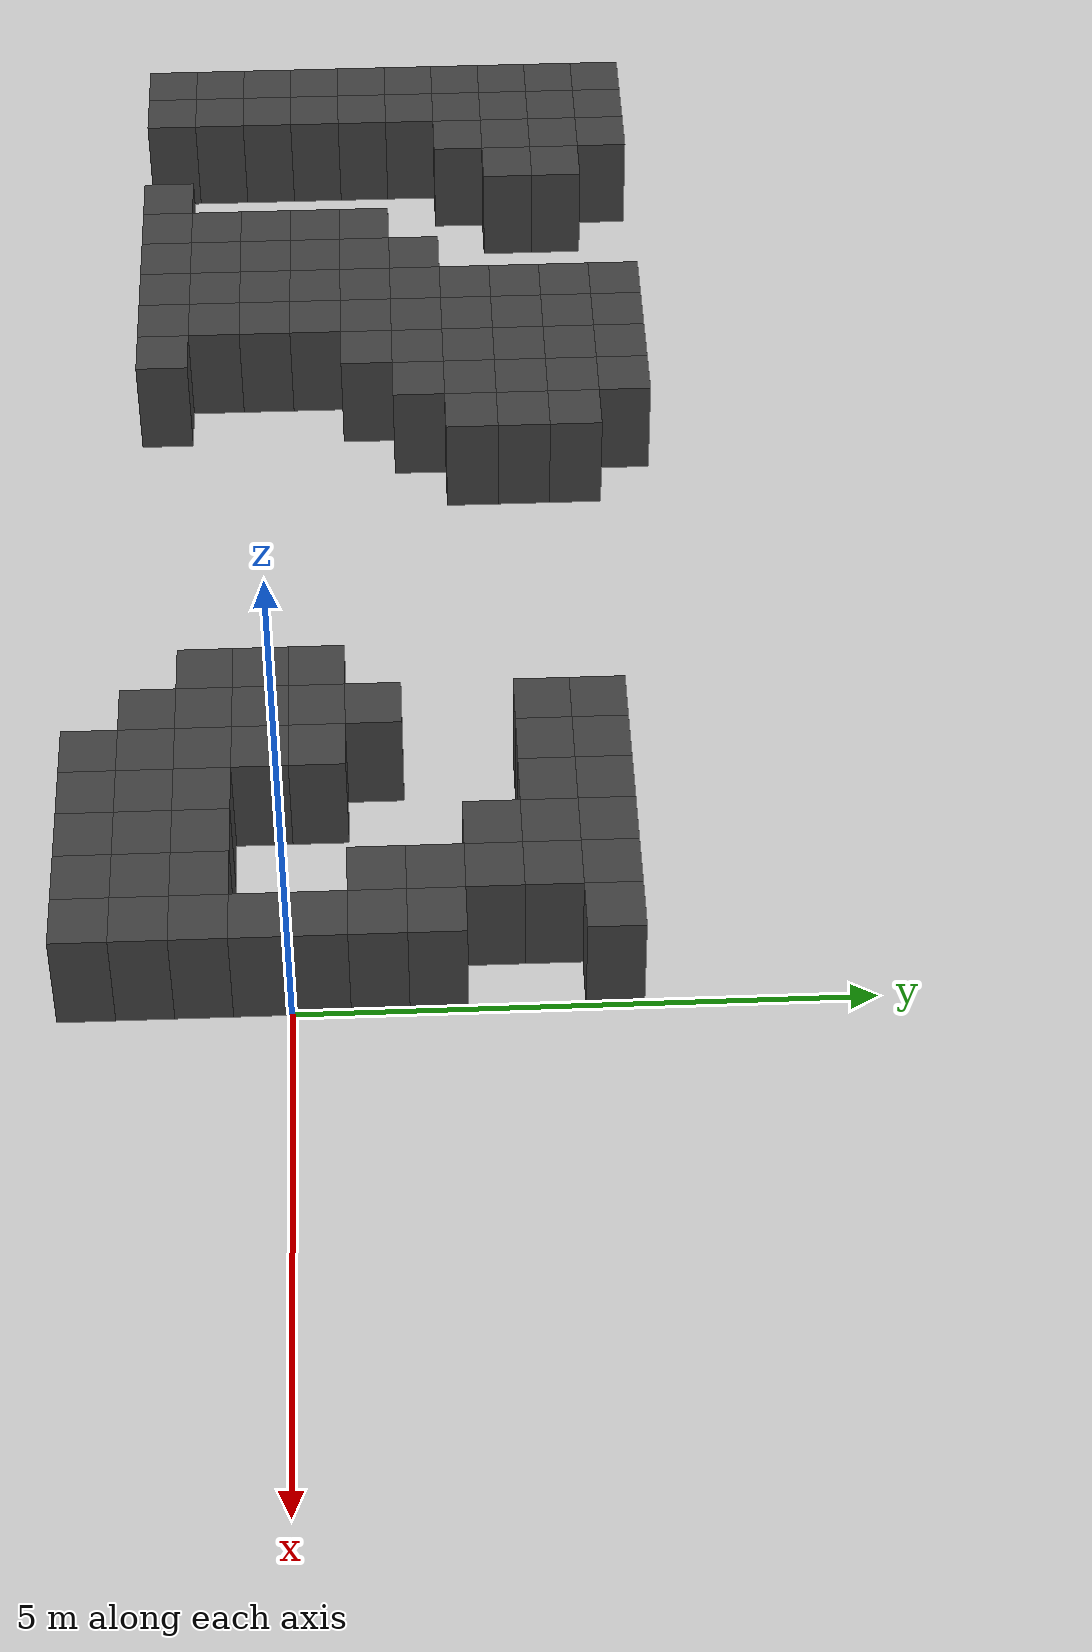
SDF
<sdf version="1.7">
 <world name="map_9061">
  <model name="ground_plane">
   <static>true</static>
   <link name="link">
    <collision name="collision">
     <geometry><plane><normal>0 0 1</normal><size>200 200</size></plane></geometry>
    </collision>
    <visual name="visual">
     <geometry><plane><normal>0 0 1</normal><size>200 200</size></plane></geometry>
     <material><ambient>0.8 0.8 0.8 1</ambient><diffuse>0.8 0.8 0.8 1</diffuse></material>
    </visual>
   </link>
  </model>
  <model name="maze_environment">
   <static>true</static>
   <link name="wall_273">
    <pose>-12.250 3.250 0.500 0 0 0</pose>
    <collision name="col"><geometry><box><size>0.5 0.5 1.0</size></box></geometry></collision>
    <visual name="vis">
     <geometry><box><size>0.5 0.5 1.0</size></box></geometry>
     <material><ambient>0.15 0.15 0.15 1</ambient><diffuse>0.25 0.25 0.25 1</diffuse></material>
    </visual>
   </link>
   <link name="wall_274">
    <pose>-11.750 3.250 0.500 0 0 0</pose>
    <collision name="col"><geometry><box><size>0.5 0.5 1.0</size></box></geometry></collision>
    <visual name="vis">
     <geometry><box><size>0.5 0.5 1.0</size></box></geometry>
     <material><ambient>0.15 0.15 0.15 1</ambient><diffuse>0.25 0.25 0.25 1</diffuse></material>
    </visual>
   </link>
   <link name="wall_275">
    <pose>-11.250 3.250 0.500 0 0 0</pose>
    <collision name="col"><geometry><box><size>0.5 0.5 1.0</size></box></geometry></collision>
    <visual name="vis">
     <geometry><box><size>0.5 0.5 1.0</size></box></geometry>
     <material><ambient>0.15 0.15 0.15 1</ambient><diffuse>0.25 0.25 0.25 1</diffuse></material>
    </visual>
   </link>
   <link name="wall_276">
    <pose>-8.750 3.250 0.500 0 0 0</pose>
    <collision name="col"><geometry><box><size>0.5 0.5 1.0</size></box></geometry></collision>
    <visual name="vis">
     <geometry><box><size>0.5 0.5 1.0</size></box></geometry>
     <material><ambient>0.15 0.15 0.15 1</ambient><diffuse>0.25 0.25 0.25 1</diffuse></material>
    </visual>
   </link>
   <link name="wall_277">
    <pose>-8.250 3.250 0.500 0 0 0</pose>
    <collision name="col"><geometry><box><size>0.5 0.5 1.0</size></box></geometry></collision>
    <visual name="vis">
     <geometry><box><size>0.5 0.5 1.0</size></box></geometry>
     <material><ambient>0.15 0.15 0.15 1</ambient><diffuse>0.25 0.25 0.25 1</diffuse></material>
    </visual>
   </link>
   <link name="wall_278">
    <pose>-7.750 3.250 0.500 0 0 0</pose>
    <collision name="col"><geometry><box><size>0.5 0.5 1.0</size></box></geometry></collision>
    <visual name="vis">
     <geometry><box><size>0.5 0.5 1.0</size></box></geometry>
     <material><ambient>0.15 0.15 0.15 1</ambient><diffuse>0.25 0.25 0.25 1</diffuse></material>
    </visual>
   </link>
   <link name="wall_279">
    <pose>-7.250 3.250 0.500 0 0 0</pose>
    <collision name="col"><geometry><box><size>0.5 0.5 1.0</size></box></geometry></collision>
    <visual name="vis">
     <geometry><box><size>0.5 0.5 1.0</size></box></geometry>
     <material><ambient>0.15 0.15 0.15 1</ambient><diffuse>0.25 0.25 0.25 1</diffuse></material>
    </visual>
   </link>
   <link name="wall_292">
    <pose>-12.250 2.750 0.500 0 0 0</pose>
    <collision name="col"><geometry><box><size>0.5 0.5 1.0</size></box></geometry></collision>
    <visual name="vis">
     <geometry><box><size>0.5 0.5 1.0</size></box></geometry>
     <material><ambient>0.15 0.15 0.15 1</ambient><diffuse>0.25 0.25 0.25 1</diffuse></material>
    </visual>
   </link>
   <link name="wall_293">
    <pose>-11.750 2.750 0.500 0 0 0</pose>
    <collision name="col"><geometry><box><size>0.5 0.5 1.0</size></box></geometry></collision>
    <visual name="vis">
     <geometry><box><size>0.5 0.5 1.0</size></box></geometry>
     <material><ambient>0.15 0.15 0.15 1</ambient><diffuse>0.25 0.25 0.25 1</diffuse></material>
    </visual>
   </link>
   <link name="wall_294">
    <pose>-11.250 2.750 0.500 0 0 0</pose>
    <collision name="col"><geometry><box><size>0.5 0.5 1.0</size></box></geometry></collision>
    <visual name="vis">
     <geometry><box><size>0.5 0.5 1.0</size></box></geometry>
     <material><ambient>0.15 0.15 0.15 1</ambient><diffuse>0.25 0.25 0.25 1</diffuse></material>
    </visual>
   </link>
   <link name="wall_295">
    <pose>-10.750 2.750 0.500 0 0 0</pose>
    <collision name="col"><geometry><box><size>0.5 0.5 1.0</size></box></geometry></collision>
    <visual name="vis">
     <geometry><box><size>0.5 0.5 1.0</size></box></geometry>
     <material><ambient>0.15 0.15 0.15 1</ambient><diffuse>0.25 0.25 0.25 1</diffuse></material>
    </visual>
   </link>
   <link name="wall_296">
    <pose>-8.750 2.750 0.500 0 0 0</pose>
    <collision name="col"><geometry><box><size>0.5 0.5 1.0</size></box></geometry></collision>
    <visual name="vis">
     <geometry><box><size>0.5 0.5 1.0</size></box></geometry>
     <material><ambient>0.15 0.15 0.15 1</ambient><diffuse>0.25 0.25 0.25 1</diffuse></material>
    </visual>
   </link>
   <link name="wall_297">
    <pose>-8.250 2.750 0.500 0 0 0</pose>
    <collision name="col"><geometry><box><size>0.5 0.5 1.0</size></box></geometry></collision>
    <visual name="vis">
     <geometry><box><size>0.5 0.5 1.0</size></box></geometry>
     <material><ambient>0.15 0.15 0.15 1</ambient><diffuse>0.25 0.25 0.25 1</diffuse></material>
    </visual>
   </link>
   <link name="wall_298">
    <pose>-7.750 2.750 0.500 0 0 0</pose>
    <collision name="col"><geometry><box><size>0.5 0.5 1.0</size></box></geometry></collision>
    <visual name="vis">
     <geometry><box><size>0.5 0.5 1.0</size></box></geometry>
     <material><ambient>0.15 0.15 0.15 1</ambient><diffuse>0.25 0.25 0.25 1</diffuse></material>
    </visual>
   </link>
   <link name="wall_299">
    <pose>-7.250 2.750 0.500 0 0 0</pose>
    <collision name="col"><geometry><box><size>0.5 0.5 1.0</size></box></geometry></collision>
    <visual name="vis">
     <geometry><box><size>0.5 0.5 1.0</size></box></geometry>
     <material><ambient>0.15 0.15 0.15 1</ambient><diffuse>0.25 0.25 0.25 1</diffuse></material>
    </visual>
   </link>
   <link name="wall_300">
    <pose>-6.750 2.750 0.500 0 0 0</pose>
    <collision name="col"><geometry><box><size>0.5 0.5 1.0</size></box></geometry></collision>
    <visual name="vis">
     <geometry><box><size>0.5 0.5 1.0</size></box></geometry>
     <material><ambient>0.15 0.15 0.15 1</ambient><diffuse>0.25 0.25 0.25 1</diffuse></material>
    </visual>
   </link>
   <link name="wall_301">
    <pose>-2.750 2.750 0.500 0 0 0</pose>
    <collision name="col"><geometry><box><size>0.5 0.5 1.0</size></box></geometry></collision>
    <visual name="vis">
     <geometry><box><size>0.5 0.5 1.0</size></box></geometry>
     <material><ambient>0.15 0.15 0.15 1</ambient><diffuse>0.25 0.25 0.25 1</diffuse></material>
    </visual>
   </link>
   <link name="wall_302">
    <pose>-2.250 2.750 0.500 0 0 0</pose>
    <collision name="col"><geometry><box><size>0.5 0.5 1.0</size></box></geometry></collision>
    <visual name="vis">
     <geometry><box><size>0.5 0.5 1.0</size></box></geometry>
     <material><ambient>0.15 0.15 0.15 1</ambient><diffuse>0.25 0.25 0.25 1</diffuse></material>
    </visual>
   </link>
   <link name="wall_303">
    <pose>-1.750 2.750 0.500 0 0 0</pose>
    <collision name="col"><geometry><box><size>0.5 0.5 1.0</size></box></geometry></collision>
    <visual name="vis">
     <geometry><box><size>0.5 0.5 1.0</size></box></geometry>
     <material><ambient>0.15 0.15 0.15 1</ambient><diffuse>0.25 0.25 0.25 1</diffuse></material>
    </visual>
   </link>
   <link name="wall_304">
    <pose>-1.250 2.750 0.500 0 0 0</pose>
    <collision name="col"><geometry><box><size>0.5 0.5 1.0</size></box></geometry></collision>
    <visual name="vis">
     <geometry><box><size>0.5 0.5 1.0</size></box></geometry>
     <material><ambient>0.15 0.15 0.15 1</ambient><diffuse>0.25 0.25 0.25 1</diffuse></material>
    </visual>
   </link>
   <link name="wall_305">
    <pose>-0.750 2.750 0.500 0 0 0</pose>
    <collision name="col"><geometry><box><size>0.5 0.5 1.0</size></box></geometry></collision>
    <visual name="vis">
     <geometry><box><size>0.5 0.5 1.0</size></box></geometry>
     <material><ambient>0.15 0.15 0.15 1</ambient><diffuse>0.25 0.25 0.25 1</diffuse></material>
    </visual>
   </link>
   <link name="wall_306">
    <pose>-0.250 2.750 0.500 0 0 0</pose>
    <collision name="col"><geometry><box><size>0.5 0.5 1.0</size></box></geometry></collision>
    <visual name="vis">
     <geometry><box><size>0.5 0.5 1.0</size></box></geometry>
     <material><ambient>0.15 0.15 0.15 1</ambient><diffuse>0.25 0.25 0.25 1</diffuse></material>
    </visual>
   </link>
   <link name="wall_313">
    <pose>-12.250 2.250 0.500 0 0 0</pose>
    <collision name="col"><geometry><box><size>0.5 0.5 1.0</size></box></geometry></collision>
    <visual name="vis">
     <geometry><box><size>0.5 0.5 1.0</size></box></geometry>
     <material><ambient>0.15 0.15 0.15 1</ambient><diffuse>0.25 0.25 0.25 1</diffuse></material>
    </visual>
   </link>
   <link name="wall_314">
    <pose>-11.750 2.250 0.500 0 0 0</pose>
    <collision name="col"><geometry><box><size>0.5 0.5 1.0</size></box></geometry></collision>
    <visual name="vis">
     <geometry><box><size>0.5 0.5 1.0</size></box></geometry>
     <material><ambient>0.15 0.15 0.15 1</ambient><diffuse>0.25 0.25 0.25 1</diffuse></material>
    </visual>
   </link>
   <link name="wall_315">
    <pose>-11.250 2.250 0.500 0 0 0</pose>
    <collision name="col"><geometry><box><size>0.5 0.5 1.0</size></box></geometry></collision>
    <visual name="vis">
     <geometry><box><size>0.5 0.5 1.0</size></box></geometry>
     <material><ambient>0.15 0.15 0.15 1</ambient><diffuse>0.25 0.25 0.25 1</diffuse></material>
    </visual>
   </link>
   <link name="wall_316">
    <pose>-10.750 2.250 0.500 0 0 0</pose>
    <collision name="col"><geometry><box><size>0.5 0.5 1.0</size></box></geometry></collision>
    <visual name="vis">
     <geometry><box><size>0.5 0.5 1.0</size></box></geometry>
     <material><ambient>0.15 0.15 0.15 1</ambient><diffuse>0.25 0.25 0.25 1</diffuse></material>
    </visual>
   </link>
   <link name="wall_317">
    <pose>-8.750 2.250 0.500 0 0 0</pose>
    <collision name="col"><geometry><box><size>0.5 0.5 1.0</size></box></geometry></collision>
    <visual name="vis">
     <geometry><box><size>0.5 0.5 1.0</size></box></geometry>
     <material><ambient>0.15 0.15 0.15 1</ambient><diffuse>0.25 0.25 0.25 1</diffuse></material>
    </visual>
   </link>
   <link name="wall_318">
    <pose>-8.250 2.250 0.500 0 0 0</pose>
    <collision name="col"><geometry><box><size>0.5 0.5 1.0</size></box></geometry></collision>
    <visual name="vis">
     <geometry><box><size>0.5 0.5 1.0</size></box></geometry>
     <material><ambient>0.15 0.15 0.15 1</ambient><diffuse>0.25 0.25 0.25 1</diffuse></material>
    </visual>
   </link>
   <link name="wall_319">
    <pose>-7.750 2.250 0.500 0 0 0</pose>
    <collision name="col"><geometry><box><size>0.5 0.5 1.0</size></box></geometry></collision>
    <visual name="vis">
     <geometry><box><size>0.5 0.5 1.0</size></box></geometry>
     <material><ambient>0.15 0.15 0.15 1</ambient><diffuse>0.25 0.25 0.25 1</diffuse></material>
    </visual>
   </link>
   <link name="wall_320">
    <pose>-7.250 2.250 0.500 0 0 0</pose>
    <collision name="col"><geometry><box><size>0.5 0.5 1.0</size></box></geometry></collision>
    <visual name="vis">
     <geometry><box><size>0.5 0.5 1.0</size></box></geometry>
     <material><ambient>0.15 0.15 0.15 1</ambient><diffuse>0.25 0.25 0.25 1</diffuse></material>
    </visual>
   </link>
   <link name="wall_321">
    <pose>-6.750 2.250 0.500 0 0 0</pose>
    <collision name="col"><geometry><box><size>0.5 0.5 1.0</size></box></geometry></collision>
    <visual name="vis">
     <geometry><box><size>0.5 0.5 1.0</size></box></geometry>
     <material><ambient>0.15 0.15 0.15 1</ambient><diffuse>0.25 0.25 0.25 1</diffuse></material>
    </visual>
   </link>
   <link name="wall_322">
    <pose>-2.750 2.250 0.500 0 0 0</pose>
    <collision name="col"><geometry><box><size>0.5 0.5 1.0</size></box></geometry></collision>
    <visual name="vis">
     <geometry><box><size>0.5 0.5 1.0</size></box></geometry>
     <material><ambient>0.15 0.15 0.15 1</ambient><diffuse>0.25 0.25 0.25 1</diffuse></material>
    </visual>
   </link>
   <link name="wall_323">
    <pose>-2.250 2.250 0.500 0 0 0</pose>
    <collision name="col"><geometry><box><size>0.5 0.5 1.0</size></box></geometry></collision>
    <visual name="vis">
     <geometry><box><size>0.5 0.5 1.0</size></box></geometry>
     <material><ambient>0.15 0.15 0.15 1</ambient><diffuse>0.25 0.25 0.25 1</diffuse></material>
    </visual>
   </link>
   <link name="wall_324">
    <pose>-1.750 2.250 0.500 0 0 0</pose>
    <collision name="col"><geometry><box><size>0.5 0.5 1.0</size></box></geometry></collision>
    <visual name="vis">
     <geometry><box><size>0.5 0.5 1.0</size></box></geometry>
     <material><ambient>0.15 0.15 0.15 1</ambient><diffuse>0.25 0.25 0.25 1</diffuse></material>
    </visual>
   </link>
   <link name="wall_325">
    <pose>-1.250 2.250 0.500 0 0 0</pose>
    <collision name="col"><geometry><box><size>0.5 0.5 1.0</size></box></geometry></collision>
    <visual name="vis">
     <geometry><box><size>0.5 0.5 1.0</size></box></geometry>
     <material><ambient>0.15 0.15 0.15 1</ambient><diffuse>0.25 0.25 0.25 1</diffuse></material>
    </visual>
   </link>
   <link name="wall_326">
    <pose>-0.750 2.250 0.500 0 0 0</pose>
    <collision name="col"><geometry><box><size>0.5 0.5 1.0</size></box></geometry></collision>
    <visual name="vis">
     <geometry><box><size>0.5 0.5 1.0</size></box></geometry>
     <material><ambient>0.15 0.15 0.15 1</ambient><diffuse>0.25 0.25 0.25 1</diffuse></material>
    </visual>
   </link>
   <link name="wall_334">
    <pose>-12.250 1.750 0.500 0 0 0</pose>
    <collision name="col"><geometry><box><size>0.5 0.5 1.0</size></box></geometry></collision>
    <visual name="vis">
     <geometry><box><size>0.5 0.5 1.0</size></box></geometry>
     <material><ambient>0.15 0.15 0.15 1</ambient><diffuse>0.25 0.25 0.25 1</diffuse></material>
    </visual>
   </link>
   <link name="wall_335">
    <pose>-11.750 1.750 0.500 0 0 0</pose>
    <collision name="col"><geometry><box><size>0.5 0.5 1.0</size></box></geometry></collision>
    <visual name="vis">
     <geometry><box><size>0.5 0.5 1.0</size></box></geometry>
     <material><ambient>0.15 0.15 0.15 1</ambient><diffuse>0.25 0.25 0.25 1</diffuse></material>
    </visual>
   </link>
   <link name="wall_336">
    <pose>-11.250 1.750 0.500 0 0 0</pose>
    <collision name="col"><geometry><box><size>0.5 0.5 1.0</size></box></geometry></collision>
    <visual name="vis">
     <geometry><box><size>0.5 0.5 1.0</size></box></geometry>
     <material><ambient>0.15 0.15 0.15 1</ambient><diffuse>0.25 0.25 0.25 1</diffuse></material>
    </visual>
   </link>
   <link name="wall_337">
    <pose>-8.750 1.750 0.500 0 0 0</pose>
    <collision name="col"><geometry><box><size>0.5 0.5 1.0</size></box></geometry></collision>
    <visual name="vis">
     <geometry><box><size>0.5 0.5 1.0</size></box></geometry>
     <material><ambient>0.15 0.15 0.15 1</ambient><diffuse>0.25 0.25 0.25 1</diffuse></material>
    </visual>
   </link>
   <link name="wall_338">
    <pose>-8.250 1.750 0.500 0 0 0</pose>
    <collision name="col"><geometry><box><size>0.5 0.5 1.0</size></box></geometry></collision>
    <visual name="vis">
     <geometry><box><size>0.5 0.5 1.0</size></box></geometry>
     <material><ambient>0.15 0.15 0.15 1</ambient><diffuse>0.25 0.25 0.25 1</diffuse></material>
    </visual>
   </link>
   <link name="wall_339">
    <pose>-7.750 1.750 0.500 0 0 0</pose>
    <collision name="col"><geometry><box><size>0.5 0.5 1.0</size></box></geometry></collision>
    <visual name="vis">
     <geometry><box><size>0.5 0.5 1.0</size></box></geometry>
     <material><ambient>0.15 0.15 0.15 1</ambient><diffuse>0.25 0.25 0.25 1</diffuse></material>
    </visual>
   </link>
   <link name="wall_340">
    <pose>-7.250 1.750 0.500 0 0 0</pose>
    <collision name="col"><geometry><box><size>0.5 0.5 1.0</size></box></geometry></collision>
    <visual name="vis">
     <geometry><box><size>0.5 0.5 1.0</size></box></geometry>
     <material><ambient>0.15 0.15 0.15 1</ambient><diffuse>0.25 0.25 0.25 1</diffuse></material>
    </visual>
   </link>
   <link name="wall_341">
    <pose>-6.750 1.750 0.500 0 0 0</pose>
    <collision name="col"><geometry><box><size>0.5 0.5 1.0</size></box></geometry></collision>
    <visual name="vis">
     <geometry><box><size>0.5 0.5 1.0</size></box></geometry>
     <material><ambient>0.15 0.15 0.15 1</ambient><diffuse>0.25 0.25 0.25 1</diffuse></material>
    </visual>
   </link>
   <link name="wall_342">
    <pose>-1.250 1.750 0.500 0 0 0</pose>
    <collision name="col"><geometry><box><size>0.5 0.5 1.0</size></box></geometry></collision>
    <visual name="vis">
     <geometry><box><size>0.5 0.5 1.0</size></box></geometry>
     <material><ambient>0.15 0.15 0.15 1</ambient><diffuse>0.25 0.25 0.25 1</diffuse></material>
    </visual>
   </link>
   <link name="wall_343">
    <pose>-0.750 1.750 0.500 0 0 0</pose>
    <collision name="col"><geometry><box><size>0.5 0.5 1.0</size></box></geometry></collision>
    <visual name="vis">
     <geometry><box><size>0.5 0.5 1.0</size></box></geometry>
     <material><ambient>0.15 0.15 0.15 1</ambient><diffuse>0.25 0.25 0.25 1</diffuse></material>
    </visual>
   </link>
   <link name="wall_354">
    <pose>-12.250 1.250 0.500 0 0 0</pose>
    <collision name="col"><geometry><box><size>0.5 0.5 1.0</size></box></geometry></collision>
    <visual name="vis">
     <geometry><box><size>0.5 0.5 1.0</size></box></geometry>
     <material><ambient>0.15 0.15 0.15 1</ambient><diffuse>0.25 0.25 0.25 1</diffuse></material>
    </visual>
   </link>
   <link name="wall_355">
    <pose>-11.750 1.250 0.500 0 0 0</pose>
    <collision name="col"><geometry><box><size>0.5 0.5 1.0</size></box></geometry></collision>
    <visual name="vis">
     <geometry><box><size>0.5 0.5 1.0</size></box></geometry>
     <material><ambient>0.15 0.15 0.15 1</ambient><diffuse>0.25 0.25 0.25 1</diffuse></material>
    </visual>
   </link>
   <link name="wall_356">
    <pose>-9.250 1.250 0.500 0 0 0</pose>
    <collision name="col"><geometry><box><size>0.5 0.5 1.0</size></box></geometry></collision>
    <visual name="vis">
     <geometry><box><size>0.5 0.5 1.0</size></box></geometry>
     <material><ambient>0.15 0.15 0.15 1</ambient><diffuse>0.25 0.25 0.25 1</diffuse></material>
    </visual>
   </link>
   <link name="wall_357">
    <pose>-8.750 1.250 0.500 0 0 0</pose>
    <collision name="col"><geometry><box><size>0.5 0.5 1.0</size></box></geometry></collision>
    <visual name="vis">
     <geometry><box><size>0.5 0.5 1.0</size></box></geometry>
     <material><ambient>0.15 0.15 0.15 1</ambient><diffuse>0.25 0.25 0.25 1</diffuse></material>
    </visual>
   </link>
   <link name="wall_358">
    <pose>-8.250 1.250 0.500 0 0 0</pose>
    <collision name="col"><geometry><box><size>0.5 0.5 1.0</size></box></geometry></collision>
    <visual name="vis">
     <geometry><box><size>0.5 0.5 1.0</size></box></geometry>
     <material><ambient>0.15 0.15 0.15 1</ambient><diffuse>0.25 0.25 0.25 1</diffuse></material>
    </visual>
   </link>
   <link name="wall_359">
    <pose>-7.750 1.250 0.500 0 0 0</pose>
    <collision name="col"><geometry><box><size>0.5 0.5 1.0</size></box></geometry></collision>
    <visual name="vis">
     <geometry><box><size>0.5 0.5 1.0</size></box></geometry>
     <material><ambient>0.15 0.15 0.15 1</ambient><diffuse>0.25 0.25 0.25 1</diffuse></material>
    </visual>
   </link>
   <link name="wall_360">
    <pose>-7.250 1.250 0.500 0 0 0</pose>
    <collision name="col"><geometry><box><size>0.5 0.5 1.0</size></box></geometry></collision>
    <visual name="vis">
     <geometry><box><size>0.5 0.5 1.0</size></box></geometry>
     <material><ambient>0.15 0.15 0.15 1</ambient><diffuse>0.25 0.25 0.25 1</diffuse></material>
    </visual>
   </link>
   <link name="wall_361">
    <pose>-0.750 1.250 0.500 0 0 0</pose>
    <collision name="col"><geometry><box><size>0.5 0.5 1.0</size></box></geometry></collision>
    <visual name="vis">
     <geometry><box><size>0.5 0.5 1.0</size></box></geometry>
     <material><ambient>0.15 0.15 0.15 1</ambient><diffuse>0.25 0.25 0.25 1</diffuse></material>
    </visual>
   </link>
   <link name="wall_362">
    <pose>-0.250 1.250 0.500 0 0 0</pose>
    <collision name="col"><geometry><box><size>0.5 0.5 1.0</size></box></geometry></collision>
    <visual name="vis">
     <geometry><box><size>0.5 0.5 1.0</size></box></geometry>
     <material><ambient>0.15 0.15 0.15 1</ambient><diffuse>0.25 0.25 0.25 1</diffuse></material>
    </visual>
   </link>
   <link name="wall_372">
    <pose>-12.250 0.750 0.500 0 0 0</pose>
    <collision name="col"><geometry><box><size>0.5 0.5 1.0</size></box></geometry></collision>
    <visual name="vis">
     <geometry><box><size>0.5 0.5 1.0</size></box></geometry>
     <material><ambient>0.15 0.15 0.15 1</ambient><diffuse>0.25 0.25 0.25 1</diffuse></material>
    </visual>
   </link>
   <link name="wall_373">
    <pose>-11.750 0.750 0.500 0 0 0</pose>
    <collision name="col"><geometry><box><size>0.5 0.5 1.0</size></box></geometry></collision>
    <visual name="vis">
     <geometry><box><size>0.5 0.5 1.0</size></box></geometry>
     <material><ambient>0.15 0.15 0.15 1</ambient><diffuse>0.25 0.25 0.25 1</diffuse></material>
    </visual>
   </link>
   <link name="wall_374">
    <pose>-9.750 0.750 0.500 0 0 0</pose>
    <collision name="col"><geometry><box><size>0.5 0.5 1.0</size></box></geometry></collision>
    <visual name="vis">
     <geometry><box><size>0.5 0.5 1.0</size></box></geometry>
     <material><ambient>0.15 0.15 0.15 1</ambient><diffuse>0.25 0.25 0.25 1</diffuse></material>
    </visual>
   </link>
   <link name="wall_375">
    <pose>-9.250 0.750 0.500 0 0 0</pose>
    <collision name="col"><geometry><box><size>0.5 0.5 1.0</size></box></geometry></collision>
    <visual name="vis">
     <geometry><box><size>0.5 0.5 1.0</size></box></geometry>
     <material><ambient>0.15 0.15 0.15 1</ambient><diffuse>0.25 0.25 0.25 1</diffuse></material>
    </visual>
   </link>
   <link name="wall_376">
    <pose>-8.750 0.750 0.500 0 0 0</pose>
    <collision name="col"><geometry><box><size>0.5 0.5 1.0</size></box></geometry></collision>
    <visual name="vis">
     <geometry><box><size>0.5 0.5 1.0</size></box></geometry>
     <material><ambient>0.15 0.15 0.15 1</ambient><diffuse>0.25 0.25 0.25 1</diffuse></material>
    </visual>
   </link>
   <link name="wall_377">
    <pose>-8.250 0.750 0.500 0 0 0</pose>
    <collision name="col"><geometry><box><size>0.5 0.5 1.0</size></box></geometry></collision>
    <visual name="vis">
     <geometry><box><size>0.5 0.5 1.0</size></box></geometry>
     <material><ambient>0.15 0.15 0.15 1</ambient><diffuse>0.25 0.25 0.25 1</diffuse></material>
    </visual>
   </link>
   <link name="wall_378">
    <pose>-7.750 0.750 0.500 0 0 0</pose>
    <collision name="col"><geometry><box><size>0.5 0.5 1.0</size></box></geometry></collision>
    <visual name="vis">
     <geometry><box><size>0.5 0.5 1.0</size></box></geometry>
     <material><ambient>0.15 0.15 0.15 1</ambient><diffuse>0.25 0.25 0.25 1</diffuse></material>
    </visual>
   </link>
   <link name="wall_379">
    <pose>-2.750 0.750 0.500 0 0 0</pose>
    <collision name="col"><geometry><box><size>0.5 0.5 1.0</size></box></geometry></collision>
    <visual name="vis">
     <geometry><box><size>0.5 0.5 1.0</size></box></geometry>
     <material><ambient>0.15 0.15 0.15 1</ambient><diffuse>0.25 0.25 0.25 1</diffuse></material>
    </visual>
   </link>
   <link name="wall_380">
    <pose>-0.750 0.750 0.500 0 0 0</pose>
    <collision name="col"><geometry><box><size>0.5 0.5 1.0</size></box></geometry></collision>
    <visual name="vis">
     <geometry><box><size>0.5 0.5 1.0</size></box></geometry>
     <material><ambient>0.15 0.15 0.15 1</ambient><diffuse>0.25 0.25 0.25 1</diffuse></material>
    </visual>
   </link>
   <link name="wall_381">
    <pose>-0.250 0.750 0.500 0 0 0</pose>
    <collision name="col"><geometry><box><size>0.5 0.5 1.0</size></box></geometry></collision>
    <visual name="vis">
     <geometry><box><size>0.5 0.5 1.0</size></box></geometry>
     <material><ambient>0.15 0.15 0.15 1</ambient><diffuse>0.25 0.25 0.25 1</diffuse></material>
    </visual>
   </link>
   <link name="wall_391">
    <pose>-12.250 0.250 0.500 0 0 0</pose>
    <collision name="col"><geometry><box><size>0.5 0.5 1.0</size></box></geometry></collision>
    <visual name="vis">
     <geometry><box><size>0.5 0.5 1.0</size></box></geometry>
     <material><ambient>0.15 0.15 0.15 1</ambient><diffuse>0.25 0.25 0.25 1</diffuse></material>
    </visual>
   </link>
   <link name="wall_392">
    <pose>-11.750 0.250 0.500 0 0 0</pose>
    <collision name="col"><geometry><box><size>0.5 0.5 1.0</size></box></geometry></collision>
    <visual name="vis">
     <geometry><box><size>0.5 0.5 1.0</size></box></geometry>
     <material><ambient>0.15 0.15 0.15 1</ambient><diffuse>0.25 0.25 0.25 1</diffuse></material>
    </visual>
   </link>
   <link name="wall_393">
    <pose>-9.750 0.250 0.500 0 0 0</pose>
    <collision name="col"><geometry><box><size>0.5 0.5 1.0</size></box></geometry></collision>
    <visual name="vis">
     <geometry><box><size>0.5 0.5 1.0</size></box></geometry>
     <material><ambient>0.15 0.15 0.15 1</ambient><diffuse>0.25 0.25 0.25 1</diffuse></material>
    </visual>
   </link>
   <link name="wall_394">
    <pose>-9.250 0.250 0.500 0 0 0</pose>
    <collision name="col"><geometry><box><size>0.5 0.5 1.0</size></box></geometry></collision>
    <visual name="vis">
     <geometry><box><size>0.5 0.5 1.0</size></box></geometry>
     <material><ambient>0.15 0.15 0.15 1</ambient><diffuse>0.25 0.25 0.25 1</diffuse></material>
    </visual>
   </link>
   <link name="wall_395">
    <pose>-8.750 0.250 0.500 0 0 0</pose>
    <collision name="col"><geometry><box><size>0.5 0.5 1.0</size></box></geometry></collision>
    <visual name="vis">
     <geometry><box><size>0.5 0.5 1.0</size></box></geometry>
     <material><ambient>0.15 0.15 0.15 1</ambient><diffuse>0.25 0.25 0.25 1</diffuse></material>
    </visual>
   </link>
   <link name="wall_396">
    <pose>-8.250 0.250 0.500 0 0 0</pose>
    <collision name="col"><geometry><box><size>0.5 0.5 1.0</size></box></geometry></collision>
    <visual name="vis">
     <geometry><box><size>0.5 0.5 1.0</size></box></geometry>
     <material><ambient>0.15 0.15 0.15 1</ambient><diffuse>0.25 0.25 0.25 1</diffuse></material>
    </visual>
   </link>
   <link name="wall_397">
    <pose>-3.250 0.250 0.500 0 0 0</pose>
    <collision name="col"><geometry><box><size>0.5 0.5 1.0</size></box></geometry></collision>
    <visual name="vis">
     <geometry><box><size>0.5 0.5 1.0</size></box></geometry>
     <material><ambient>0.15 0.15 0.15 1</ambient><diffuse>0.25 0.25 0.25 1</diffuse></material>
    </visual>
   </link>
   <link name="wall_398">
    <pose>-2.750 0.250 0.500 0 0 0</pose>
    <collision name="col"><geometry><box><size>0.5 0.5 1.0</size></box></geometry></collision>
    <visual name="vis">
     <geometry><box><size>0.5 0.5 1.0</size></box></geometry>
     <material><ambient>0.15 0.15 0.15 1</ambient><diffuse>0.25 0.25 0.25 1</diffuse></material>
    </visual>
   </link>
   <link name="wall_399">
    <pose>-2.250 0.250 0.500 0 0 0</pose>
    <collision name="col"><geometry><box><size>0.5 0.5 1.0</size></box></geometry></collision>
    <visual name="vis">
     <geometry><box><size>0.5 0.5 1.0</size></box></geometry>
     <material><ambient>0.15 0.15 0.15 1</ambient><diffuse>0.25 0.25 0.25 1</diffuse></material>
    </visual>
   </link>
   <link name="wall_400">
    <pose>-0.250 0.250 0.500 0 0 0</pose>
    <collision name="col"><geometry><box><size>0.5 0.5 1.0</size></box></geometry></collision>
    <visual name="vis">
     <geometry><box><size>0.5 0.5 1.0</size></box></geometry>
     <material><ambient>0.15 0.15 0.15 1</ambient><diffuse>0.25 0.25 0.25 1</diffuse></material>
    </visual>
   </link>
   <link name="wall_409">
    <pose>-12.250 -0.250 0.500 0 0 0</pose>
    <collision name="col"><geometry><box><size>0.5 0.5 1.0</size></box></geometry></collision>
    <visual name="vis">
     <geometry><box><size>0.5 0.5 1.0</size></box></geometry>
     <material><ambient>0.15 0.15 0.15 1</ambient><diffuse>0.25 0.25 0.25 1</diffuse></material>
    </visual>
   </link>
   <link name="wall_410">
    <pose>-11.750 -0.250 0.500 0 0 0</pose>
    <collision name="col"><geometry><box><size>0.5 0.5 1.0</size></box></geometry></collision>
    <visual name="vis">
     <geometry><box><size>0.5 0.5 1.0</size></box></geometry>
     <material><ambient>0.15 0.15 0.15 1</ambient><diffuse>0.25 0.25 0.25 1</diffuse></material>
    </visual>
   </link>
   <link name="wall_411">
    <pose>-9.750 -0.250 0.500 0 0 0</pose>
    <collision name="col"><geometry><box><size>0.5 0.5 1.0</size></box></geometry></collision>
    <visual name="vis">
     <geometry><box><size>0.5 0.5 1.0</size></box></geometry>
     <material><ambient>0.15 0.15 0.15 1</ambient><diffuse>0.25 0.25 0.25 1</diffuse></material>
    </visual>
   </link>
   <link name="wall_412">
    <pose>-9.250 -0.250 0.500 0 0 0</pose>
    <collision name="col"><geometry><box><size>0.5 0.5 1.0</size></box></geometry></collision>
    <visual name="vis">
     <geometry><box><size>0.5 0.5 1.0</size></box></geometry>
     <material><ambient>0.15 0.15 0.15 1</ambient><diffuse>0.25 0.25 0.25 1</diffuse></material>
    </visual>
   </link>
   <link name="wall_413">
    <pose>-8.750 -0.250 0.500 0 0 0</pose>
    <collision name="col"><geometry><box><size>0.5 0.5 1.0</size></box></geometry></collision>
    <visual name="vis">
     <geometry><box><size>0.5 0.5 1.0</size></box></geometry>
     <material><ambient>0.15 0.15 0.15 1</ambient><diffuse>0.25 0.25 0.25 1</diffuse></material>
    </visual>
   </link>
   <link name="wall_414">
    <pose>-8.250 -0.250 0.500 0 0 0</pose>
    <collision name="col"><geometry><box><size>0.5 0.5 1.0</size></box></geometry></collision>
    <visual name="vis">
     <geometry><box><size>0.5 0.5 1.0</size></box></geometry>
     <material><ambient>0.15 0.15 0.15 1</ambient><diffuse>0.25 0.25 0.25 1</diffuse></material>
    </visual>
   </link>
   <link name="wall_415">
    <pose>-3.250 -0.250 0.500 0 0 0</pose>
    <collision name="col"><geometry><box><size>0.5 0.5 1.0</size></box></geometry></collision>
    <visual name="vis">
     <geometry><box><size>0.5 0.5 1.0</size></box></geometry>
     <material><ambient>0.15 0.15 0.15 1</ambient><diffuse>0.25 0.25 0.25 1</diffuse></material>
    </visual>
   </link>
   <link name="wall_416">
    <pose>-2.750 -0.250 0.500 0 0 0</pose>
    <collision name="col"><geometry><box><size>0.5 0.5 1.0</size></box></geometry></collision>
    <visual name="vis">
     <geometry><box><size>0.5 0.5 1.0</size></box></geometry>
     <material><ambient>0.15 0.15 0.15 1</ambient><diffuse>0.25 0.25 0.25 1</diffuse></material>
    </visual>
   </link>
   <link name="wall_417">
    <pose>-2.250 -0.250 0.500 0 0 0</pose>
    <collision name="col"><geometry><box><size>0.5 0.5 1.0</size></box></geometry></collision>
    <visual name="vis">
     <geometry><box><size>0.5 0.5 1.0</size></box></geometry>
     <material><ambient>0.15 0.15 0.15 1</ambient><diffuse>0.25 0.25 0.25 1</diffuse></material>
    </visual>
   </link>
   <link name="wall_418">
    <pose>-0.250 -0.250 0.500 0 0 0</pose>
    <collision name="col"><geometry><box><size>0.5 0.5 1.0</size></box></geometry></collision>
    <visual name="vis">
     <geometry><box><size>0.5 0.5 1.0</size></box></geometry>
     <material><ambient>0.15 0.15 0.15 1</ambient><diffuse>0.25 0.25 0.25 1</diffuse></material>
    </visual>
   </link>
   <link name="wall_426">
    <pose>-12.250 -0.750 0.500 0 0 0</pose>
    <collision name="col"><geometry><box><size>0.5 0.5 1.0</size></box></geometry></collision>
    <visual name="vis">
     <geometry><box><size>0.5 0.5 1.0</size></box></geometry>
     <material><ambient>0.15 0.15 0.15 1</ambient><diffuse>0.25 0.25 0.25 1</diffuse></material>
    </visual>
   </link>
   <link name="wall_427">
    <pose>-11.750 -0.750 0.500 0 0 0</pose>
    <collision name="col"><geometry><box><size>0.5 0.5 1.0</size></box></geometry></collision>
    <visual name="vis">
     <geometry><box><size>0.5 0.5 1.0</size></box></geometry>
     <material><ambient>0.15 0.15 0.15 1</ambient><diffuse>0.25 0.25 0.25 1</diffuse></material>
    </visual>
   </link>
   <link name="wall_428">
    <pose>-9.750 -0.750 0.500 0 0 0</pose>
    <collision name="col"><geometry><box><size>0.5 0.5 1.0</size></box></geometry></collision>
    <visual name="vis">
     <geometry><box><size>0.5 0.5 1.0</size></box></geometry>
     <material><ambient>0.15 0.15 0.15 1</ambient><diffuse>0.25 0.25 0.25 1</diffuse></material>
    </visual>
   </link>
   <link name="wall_429">
    <pose>-9.250 -0.750 0.500 0 0 0</pose>
    <collision name="col"><geometry><box><size>0.5 0.5 1.0</size></box></geometry></collision>
    <visual name="vis">
     <geometry><box><size>0.5 0.5 1.0</size></box></geometry>
     <material><ambient>0.15 0.15 0.15 1</ambient><diffuse>0.25 0.25 0.25 1</diffuse></material>
    </visual>
   </link>
   <link name="wall_430">
    <pose>-8.750 -0.750 0.500 0 0 0</pose>
    <collision name="col"><geometry><box><size>0.5 0.5 1.0</size></box></geometry></collision>
    <visual name="vis">
     <geometry><box><size>0.5 0.5 1.0</size></box></geometry>
     <material><ambient>0.15 0.15 0.15 1</ambient><diffuse>0.25 0.25 0.25 1</diffuse></material>
    </visual>
   </link>
   <link name="wall_431">
    <pose>-8.250 -0.750 0.500 0 0 0</pose>
    <collision name="col"><geometry><box><size>0.5 0.5 1.0</size></box></geometry></collision>
    <visual name="vis">
     <geometry><box><size>0.5 0.5 1.0</size></box></geometry>
     <material><ambient>0.15 0.15 0.15 1</ambient><diffuse>0.25 0.25 0.25 1</diffuse></material>
    </visual>
   </link>
   <link name="wall_432">
    <pose>-3.250 -0.750 0.500 0 0 0</pose>
    <collision name="col"><geometry><box><size>0.5 0.5 1.0</size></box></geometry></collision>
    <visual name="vis">
     <geometry><box><size>0.5 0.5 1.0</size></box></geometry>
     <material><ambient>0.15 0.15 0.15 1</ambient><diffuse>0.25 0.25 0.25 1</diffuse></material>
    </visual>
   </link>
   <link name="wall_433">
    <pose>-2.750 -0.750 0.500 0 0 0</pose>
    <collision name="col"><geometry><box><size>0.5 0.5 1.0</size></box></geometry></collision>
    <visual name="vis">
     <geometry><box><size>0.5 0.5 1.0</size></box></geometry>
     <material><ambient>0.15 0.15 0.15 1</ambient><diffuse>0.25 0.25 0.25 1</diffuse></material>
    </visual>
   </link>
   <link name="wall_434">
    <pose>-2.250 -0.750 0.500 0 0 0</pose>
    <collision name="col"><geometry><box><size>0.5 0.5 1.0</size></box></geometry></collision>
    <visual name="vis">
     <geometry><box><size>0.5 0.5 1.0</size></box></geometry>
     <material><ambient>0.15 0.15 0.15 1</ambient><diffuse>0.25 0.25 0.25 1</diffuse></material>
    </visual>
   </link>
   <link name="wall_435">
    <pose>-1.750 -0.750 0.500 0 0 0</pose>
    <collision name="col"><geometry><box><size>0.5 0.5 1.0</size></box></geometry></collision>
    <visual name="vis">
     <geometry><box><size>0.5 0.5 1.0</size></box></geometry>
     <material><ambient>0.15 0.15 0.15 1</ambient><diffuse>0.25 0.25 0.25 1</diffuse></material>
    </visual>
   </link>
   <link name="wall_436">
    <pose>-1.250 -0.750 0.500 0 0 0</pose>
    <collision name="col"><geometry><box><size>0.5 0.5 1.0</size></box></geometry></collision>
    <visual name="vis">
     <geometry><box><size>0.5 0.5 1.0</size></box></geometry>
     <material><ambient>0.15 0.15 0.15 1</ambient><diffuse>0.25 0.25 0.25 1</diffuse></material>
    </visual>
   </link>
   <link name="wall_437">
    <pose>-0.750 -0.750 0.500 0 0 0</pose>
    <collision name="col"><geometry><box><size>0.5 0.5 1.0</size></box></geometry></collision>
    <visual name="vis">
     <geometry><box><size>0.5 0.5 1.0</size></box></geometry>
     <material><ambient>0.15 0.15 0.15 1</ambient><diffuse>0.25 0.25 0.25 1</diffuse></material>
    </visual>
   </link>
   <link name="wall_438">
    <pose>-0.250 -0.750 0.500 0 0 0</pose>
    <collision name="col"><geometry><box><size>0.5 0.5 1.0</size></box></geometry></collision>
    <visual name="vis">
     <geometry><box><size>0.5 0.5 1.0</size></box></geometry>
     <material><ambient>0.15 0.15 0.15 1</ambient><diffuse>0.25 0.25 0.25 1</diffuse></material>
    </visual>
   </link>
   <link name="wall_446">
    <pose>-12.250 -1.250 0.500 0 0 0</pose>
    <collision name="col"><geometry><box><size>0.5 0.5 1.0</size></box></geometry></collision>
    <visual name="vis">
     <geometry><box><size>0.5 0.5 1.0</size></box></geometry>
     <material><ambient>0.15 0.15 0.15 1</ambient><diffuse>0.25 0.25 0.25 1</diffuse></material>
    </visual>
   </link>
   <link name="wall_447">
    <pose>-11.750 -1.250 0.500 0 0 0</pose>
    <collision name="col"><geometry><box><size>0.5 0.5 1.0</size></box></geometry></collision>
    <visual name="vis">
     <geometry><box><size>0.5 0.5 1.0</size></box></geometry>
     <material><ambient>0.15 0.15 0.15 1</ambient><diffuse>0.25 0.25 0.25 1</diffuse></material>
    </visual>
   </link>
   <link name="wall_448">
    <pose>-10.250 -1.250 0.500 0 0 0</pose>
    <collision name="col"><geometry><box><size>0.5 0.5 1.0</size></box></geometry></collision>
    <visual name="vis">
     <geometry><box><size>0.5 0.5 1.0</size></box></geometry>
     <material><ambient>0.15 0.15 0.15 1</ambient><diffuse>0.25 0.25 0.25 1</diffuse></material>
    </visual>
   </link>
   <link name="wall_449">
    <pose>-9.750 -1.250 0.500 0 0 0</pose>
    <collision name="col"><geometry><box><size>0.5 0.5 1.0</size></box></geometry></collision>
    <visual name="vis">
     <geometry><box><size>0.5 0.5 1.0</size></box></geometry>
     <material><ambient>0.15 0.15 0.15 1</ambient><diffuse>0.25 0.25 0.25 1</diffuse></material>
    </visual>
   </link>
   <link name="wall_450">
    <pose>-9.250 -1.250 0.500 0 0 0</pose>
    <collision name="col"><geometry><box><size>0.5 0.5 1.0</size></box></geometry></collision>
    <visual name="vis">
     <geometry><box><size>0.5 0.5 1.0</size></box></geometry>
     <material><ambient>0.15 0.15 0.15 1</ambient><diffuse>0.25 0.25 0.25 1</diffuse></material>
    </visual>
   </link>
   <link name="wall_451">
    <pose>-8.750 -1.250 0.500 0 0 0</pose>
    <collision name="col"><geometry><box><size>0.5 0.5 1.0</size></box></geometry></collision>
    <visual name="vis">
     <geometry><box><size>0.5 0.5 1.0</size></box></geometry>
     <material><ambient>0.15 0.15 0.15 1</ambient><diffuse>0.25 0.25 0.25 1</diffuse></material>
    </visual>
   </link>
   <link name="wall_452">
    <pose>-8.250 -1.250 0.500 0 0 0</pose>
    <collision name="col"><geometry><box><size>0.5 0.5 1.0</size></box></geometry></collision>
    <visual name="vis">
     <geometry><box><size>0.5 0.5 1.0</size></box></geometry>
     <material><ambient>0.15 0.15 0.15 1</ambient><diffuse>0.25 0.25 0.25 1</diffuse></material>
    </visual>
   </link>
   <link name="wall_453">
    <pose>-7.750 -1.250 0.500 0 0 0</pose>
    <collision name="col"><geometry><box><size>0.5 0.5 1.0</size></box></geometry></collision>
    <visual name="vis">
     <geometry><box><size>0.5 0.5 1.0</size></box></geometry>
     <material><ambient>0.15 0.15 0.15 1</ambient><diffuse>0.25 0.25 0.25 1</diffuse></material>
    </visual>
   </link>
   <link name="wall_454">
    <pose>-2.750 -1.250 0.500 0 0 0</pose>
    <collision name="col"><geometry><box><size>0.5 0.5 1.0</size></box></geometry></collision>
    <visual name="vis">
     <geometry><box><size>0.5 0.5 1.0</size></box></geometry>
     <material><ambient>0.15 0.15 0.15 1</ambient><diffuse>0.25 0.25 0.25 1</diffuse></material>
    </visual>
   </link>
   <link name="wall_455">
    <pose>-2.250 -1.250 0.500 0 0 0</pose>
    <collision name="col"><geometry><box><size>0.5 0.5 1.0</size></box></geometry></collision>
    <visual name="vis">
     <geometry><box><size>0.5 0.5 1.0</size></box></geometry>
     <material><ambient>0.15 0.15 0.15 1</ambient><diffuse>0.25 0.25 0.25 1</diffuse></material>
    </visual>
   </link>
   <link name="wall_456">
    <pose>-1.750 -1.250 0.500 0 0 0</pose>
    <collision name="col"><geometry><box><size>0.5 0.5 1.0</size></box></geometry></collision>
    <visual name="vis">
     <geometry><box><size>0.5 0.5 1.0</size></box></geometry>
     <material><ambient>0.15 0.15 0.15 1</ambient><diffuse>0.25 0.25 0.25 1</diffuse></material>
    </visual>
   </link>
   <link name="wall_457">
    <pose>-1.250 -1.250 0.500 0 0 0</pose>
    <collision name="col"><geometry><box><size>0.5 0.5 1.0</size></box></geometry></collision>
    <visual name="vis">
     <geometry><box><size>0.5 0.5 1.0</size></box></geometry>
     <material><ambient>0.15 0.15 0.15 1</ambient><diffuse>0.25 0.25 0.25 1</diffuse></material>
    </visual>
   </link>
   <link name="wall_458">
    <pose>-0.750 -1.250 0.500 0 0 0</pose>
    <collision name="col"><geometry><box><size>0.5 0.5 1.0</size></box></geometry></collision>
    <visual name="vis">
     <geometry><box><size>0.5 0.5 1.0</size></box></geometry>
     <material><ambient>0.15 0.15 0.15 1</ambient><diffuse>0.25 0.25 0.25 1</diffuse></material>
    </visual>
   </link>
   <link name="wall_459">
    <pose>-0.250 -1.250 0.500 0 0 0</pose>
    <collision name="col"><geometry><box><size>0.5 0.5 1.0</size></box></geometry></collision>
    <visual name="vis">
     <geometry><box><size>0.5 0.5 1.0</size></box></geometry>
     <material><ambient>0.15 0.15 0.15 1</ambient><diffuse>0.25 0.25 0.25 1</diffuse></material>
    </visual>
   </link>
   <link name="wall_475">
    <pose>-2.250 -1.750 0.500 0 0 0</pose>
    <collision name="col"><geometry><box><size>0.5 0.5 1.0</size></box></geometry></collision>
    <visual name="vis">
     <geometry><box><size>0.5 0.5 1.0</size></box></geometry>
     <material><ambient>0.15 0.15 0.15 1</ambient><diffuse>0.25 0.25 0.25 1</diffuse></material>
    </visual>
   </link>
   <link name="wall_476">
    <pose>-1.750 -1.750 0.500 0 0 0</pose>
    <collision name="col"><geometry><box><size>0.5 0.5 1.0</size></box></geometry></collision>
    <visual name="vis">
     <geometry><box><size>0.5 0.5 1.0</size></box></geometry>
     <material><ambient>0.15 0.15 0.15 1</ambient><diffuse>0.25 0.25 0.25 1</diffuse></material>
    </visual>
   </link>
   <link name="wall_477">
    <pose>-1.250 -1.750 0.500 0 0 0</pose>
    <collision name="col"><geometry><box><size>0.5 0.5 1.0</size></box></geometry></collision>
    <visual name="vis">
     <geometry><box><size>0.5 0.5 1.0</size></box></geometry>
     <material><ambient>0.15 0.15 0.15 1</ambient><diffuse>0.25 0.25 0.25 1</diffuse></material>
    </visual>
   </link>
   <link name="wall_478">
    <pose>-0.750 -1.750 0.500 0 0 0</pose>
    <collision name="col"><geometry><box><size>0.5 0.5 1.0</size></box></geometry></collision>
    <visual name="vis">
     <geometry><box><size>0.5 0.5 1.0</size></box></geometry>
     <material><ambient>0.15 0.15 0.15 1</ambient><diffuse>0.25 0.25 0.25 1</diffuse></material>
    </visual>
   </link>
   <link name="wall_479">
    <pose>-0.250 -1.750 0.500 0 0 0</pose>
    <collision name="col"><geometry><box><size>0.5 0.5 1.0</size></box></geometry></collision>
    <visual name="vis">
     <geometry><box><size>0.5 0.5 1.0</size></box></geometry>
     <material><ambient>0.15 0.15 0.15 1</ambient><diffuse>0.25 0.25 0.25 1</diffuse></material>
    </visual>
   </link>
  </model>
 </world>
</sdf>
